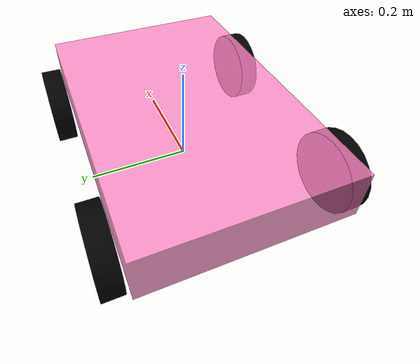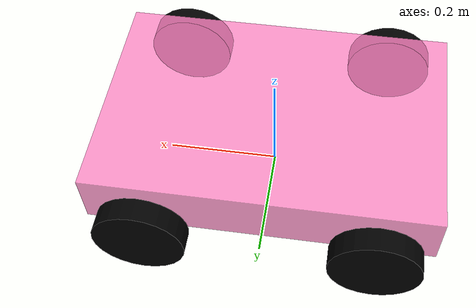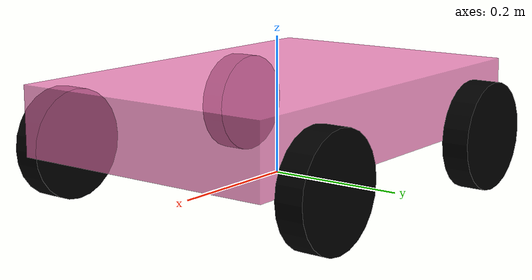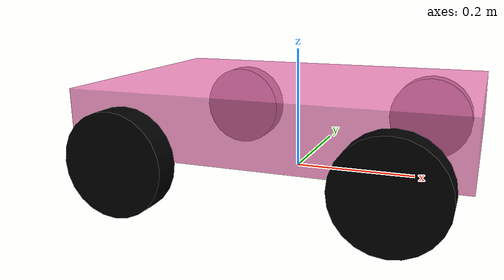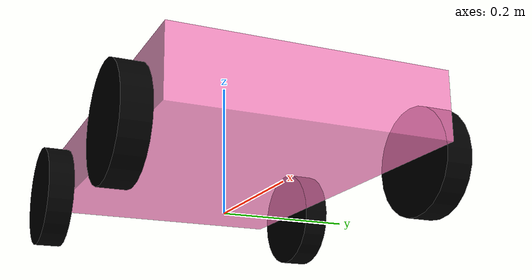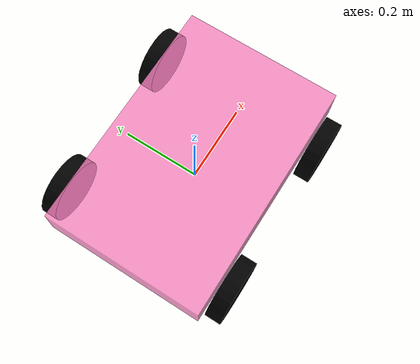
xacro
<?xml version="1.0"?>
<robot xmlns:xacro="http://www.ros.org/wiki/xacro" name="differential_drive_robot">

   <!-- Parameters -->
  <xacro:property name="base_length" value="0.6"/>
  <xacro:property name="base_width"  value="0.4"/>
  <xacro:property name="base_height" value="0.1"/>
  <xacro:property name="wheel_radius" value="0.08"/>
  <xacro:property name="wheel_width"  value="0.04"/>
  <xacro:property name="wheel_zoff"   value="0.05"/>
  <xacro:property name="wheel_ygap"   value="0.025"/>

  <!-- Colors -->
  <material name="blue"><color rgba="1 0.51 0.76 0.8"/></material>
  <material name="black"><color rgba="0 0 0 1"/></material>

  <!-- Dummy root -->
  <link name="base_footprint"/>
  <joint name="base_joint" type="fixed">
    <parent link="base_footprint"/>
    <child link="base_link"/>
    <origin xyz="0 0 0.1" rpy="0 0 0"/>
  </joint>

  <!-- Base body -->
  <link name="base_link">
    <visual>
      <geometry>
        <box size="${base_length} ${base_width} ${base_height}"/>
      </geometry>
      <material name="blue"/>
    </visual>
    <collision>
      <geometry>
        <box size="${base_length} ${base_width} ${base_height}"/>
      </geometry>
    </collision>
    <inertial>
      <mass value="10.0"/>
      <inertia ixx="1" ixy="0" ixz="0" iyy="1" iyz="0" izz="1"/>
    </inertial>
  </link>

  <!-- === FRONT LEFT (Driven) === -->
  <joint name="front_left_wheel_joint" type="continuous">
    <parent link="base_link"/>
    <child link="front_left_wheel"/>
    <origin xyz="${base_length/2 - 0.1} ${base_width/2 + wheel_ygap} ${-wheel_zoff}" rpy="-1.5708 0 0"/>
    <axis xyz="0 0 1"/>
    <limit effort="1.0" velocity="10.0"/>
  </joint>
  <link name="front_left_wheel">
    <visual>
      <geometry>
        <cylinder radius="${wheel_radius}" length="${wheel_width}"/>
      </geometry>
      <material name="black"/>
    </visual>
  </link>

  <!-- === FRONT RIGHT (Driven) === -->
  <joint name="front_right_wheel_joint" type="continuous">
    <parent link="base_link"/>
    <child link="front_right_wheel"/>
    <origin xyz="${base_length/2 - 0.1} ${-base_width/2 - wheel_ygap} ${-wheel_zoff}" rpy="-1.5708 0 0"/>
    <axis xyz="0 0 1"/>
    <limit effort="1.0" velocity="10.0"/>
  </joint>
  <link name="front_right_wheel">
    <visual>
      <geometry>
        <cylinder radius="${wheel_radius}" length="${wheel_width}"/>
      </geometry>
      <material name="black"/>
    </visual>
  </link>

  <!-- === REAR LEFT (Passive) === -->
  <joint name="rear_left_wheel_joint" type="fixed">
    <parent link="base_link"/>
    <child link="rear_left_wheel"/>
    <origin xyz="${-base_length/2 + 0.1} ${base_width/2 + wheel_ygap} ${-wheel_zoff}" rpy="-1.5708 0 0"/>
  </joint>
  <link name="rear_left_wheel">
    <visual>
      <geometry>
        <cylinder radius="${wheel_radius}" length="${wheel_width}"/>
      </geometry>
      <material name="black"/>
    </visual>
  </link>

  <!-- === REAR RIGHT (Passive) === -->
  <joint name="rear_right_wheel_joint" type="fixed">
    <parent link="base_link"/>
    <child link="rear_right_wheel"/>
    <origin xyz="${-base_length/2 + 0.1} ${-base_width/2 - wheel_ygap} ${-wheel_zoff}" rpy="-1.5708 0 0"/>
  </joint>
  <link name="rear_right_wheel">
    <visual>
      <geometry>
        <cylinder radius="${wheel_radius}" length="${wheel_width}"/>
      </geometry>
      <material name="black"/>
    </visual>
  </link>

</robot>
